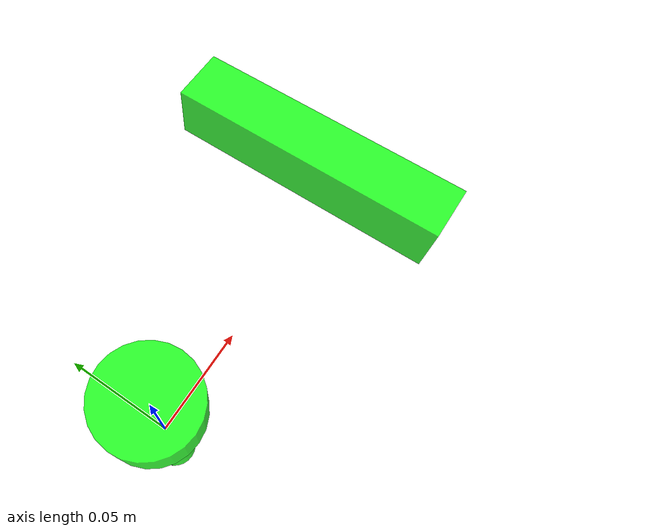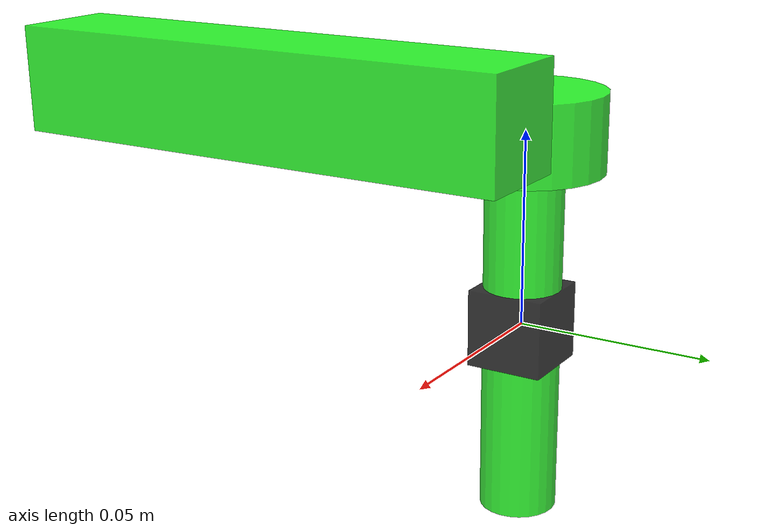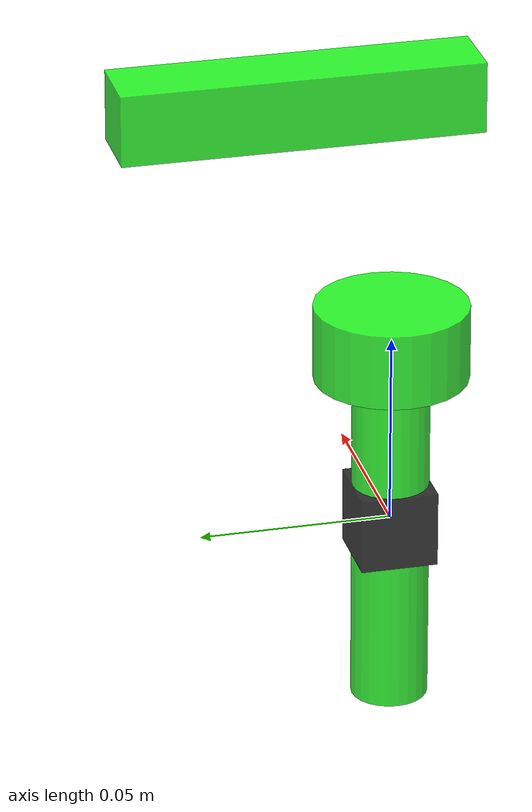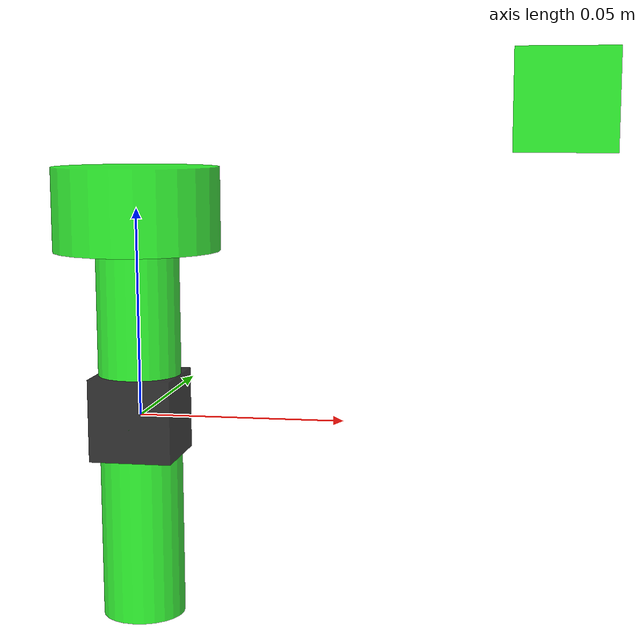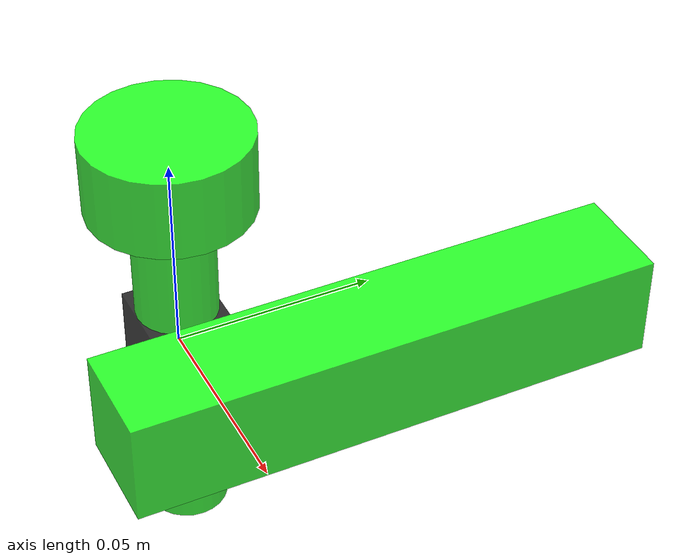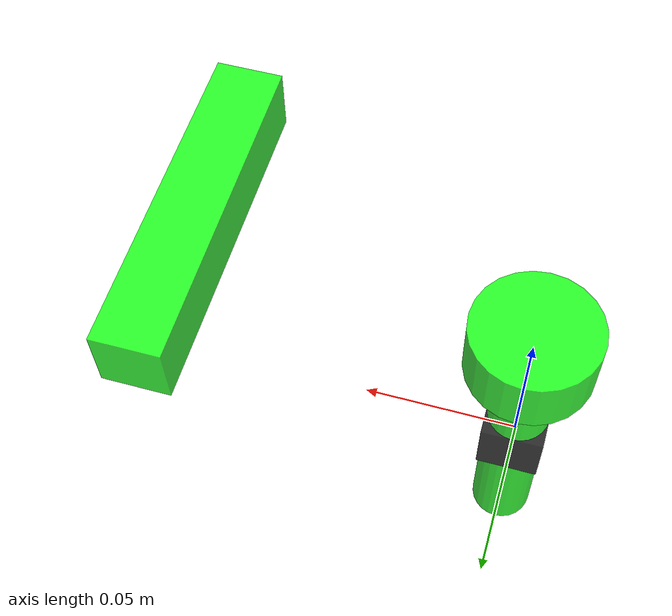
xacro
<?xml version="1.0"?>
<robot xmlns:xacro="http://www.ros.org/wiki/xacro" name="fishbot">
    <xacro:include filename="$(find fishbot_description)/urdf/fishbot/base.urdf.xacro"/>
    <!-- sensor modules -->
    <xacro:include filename="$(find fishbot_description)/urdf/sensor/camera.urdf.xacro"/>
    <xacro:include filename="$(find fishbot_description)/urdf/sensor/imu.urdf.xacro"/>
    <xacro:include filename="$(find fishbot_description)/urdf/sensor/laser.urdf.xacro"/>

    <!-- base -->
    <xacro:base_xacro length="0.12" radius="0.1"/>
    <!-- sensor -->
    <xacro:imu_xacro xyz="0 0 0 0.02"/>
    <xacro:laser_xacro xyz="0 0 0 0.10"/>
    <xacro:camera_xacro xyz="0.10 0 0.075"/>
</robot>

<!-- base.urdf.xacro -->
<robot xmlns:xacro="http://www.ros.org/wiki/xacro" name="first_robot">
    <xacro:macro name="base_xacro" params="radius length">
        <link name="base_link">
            <visual>
                <origin xyz="0.0 0.0 0.0" rpy="0.0 0.0 0.0"/>
                <geometry>
                    <cylinder radius="0.0" length="0.0"/>
                </geometry>
                <material name="white">
                    <color rgba="1.0 1.0 1.0 0.5"/>
                </material>
            </visual>
        </link>
    </xacro:macro>
</robot>

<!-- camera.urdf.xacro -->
<robot xmlns:xacro="http://www.ros.org/wiki/xacro">
    <xacro:macro name="camera_xacro" params="xyz">
    <gazebo reference="camera_link">
        <material>Gazebo/Black</material>
    </gazebo>
        <!-- camera module-->
        <link name="camera_link">
            <visual>
                <origin xyz="0.0 0.0 0.0" rpy="0.0 0.0 0.0"/>
                <geometry>
                    <box size="0.02 0.10 0.02"/>
                </geometry>
                <material name="green">
                    <color rgba="0.0 1.0 0.0 0.8"/>
                </material>
            </visual>

            <collision>
                <origin xyz="0.0 0.0 0.0" rpy="0.0 0.0 0.0"/>
                <geometry>
                    <box size="0.02 0.10 0.02"/>
                </geometry>
            </collision>

            <xacro:box_inertia m="1.0" w="0.02" h="0.10" d="0.02"/>
        </link>

        <joint name="camera_joint" type="fixed">
            <parent link="base_link"/>
            <child link="camera_link"/>
            <origin xyz="${xyz}"/>
        </joint>
    </xacro:macro>
</robot>

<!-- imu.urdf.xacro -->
<robot xmlns:xacro="http://www.ros.org/wiki/xacro">
    <xacro:macro name="imu_xacro" params="xyz">
        <link name="imu_link">
            <visual>
                <origin xyz="0.0 0.0 0.0" rpy="0.0 0.0 0.0"/>
                <geometry>
                    <box size="0.02 0.02 0.02"/>
                </geometry>
                <material name="black">
                    <color rgba="0.0 0.0 0.0 0.8"/>
                </material>
            </visual>
        </link>

        <joint name="imu_joint" type="fixed">
            <parent link="base_link"/>
            <child link="imu_link"/>
            <origin xyz="${xyz}"/>
        </joint>
    </xacro:macro>
</robot>

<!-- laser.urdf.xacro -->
<robot xmlns:xacro="http://www.ros.org/wiki/xacro" name="robot_name">
    <xacro:macro name="laser_xacro" params="xyz">
        <!-- laser supporter module-->
        <link name="laser_cylinder_link">
            <visual>
                <origin xyz="0.0 0.0 0.0" rpy="0.0 0.0 0.0"/>
                <geometry>
                    <cylinder radius="0.01" length="0.1"/>
                </geometry>
                <material name="green">
                    <color rgba="0.0 1.0 0.0 0.8"/>
                </material>
            </visual>
        </link>

        <joint name="laser_cylinder_joint" type="fixed">
            <parent link="base_link"/>
            <child link="laser_cylinder_link"/>
            <origin xyz="${xyz}"/>
        </joint>

        <!-- laser module -->
        <link name="laser_link">
            <visual>
                <origin xyz="0.0 0.0 0.0" rpy="0.0 0.0 0.0"/>
                <geometry>
                    <cylinder radius="0.02" length="0.02"/>
                </geometry>
                <material name="green">
                    <color rgba="0.0 1.0 0.0 0.8"/>
                </material>
            </visual>
        </link>

        <joint name="laser_joint" type="fixed">
            <parent link="laser_cylinder_link"/>
            <child link="laser_link"/>
            <origin xyz="0.0 0.0 0.05"/>
        </joint>

    </xacro:macro>
</robot>
